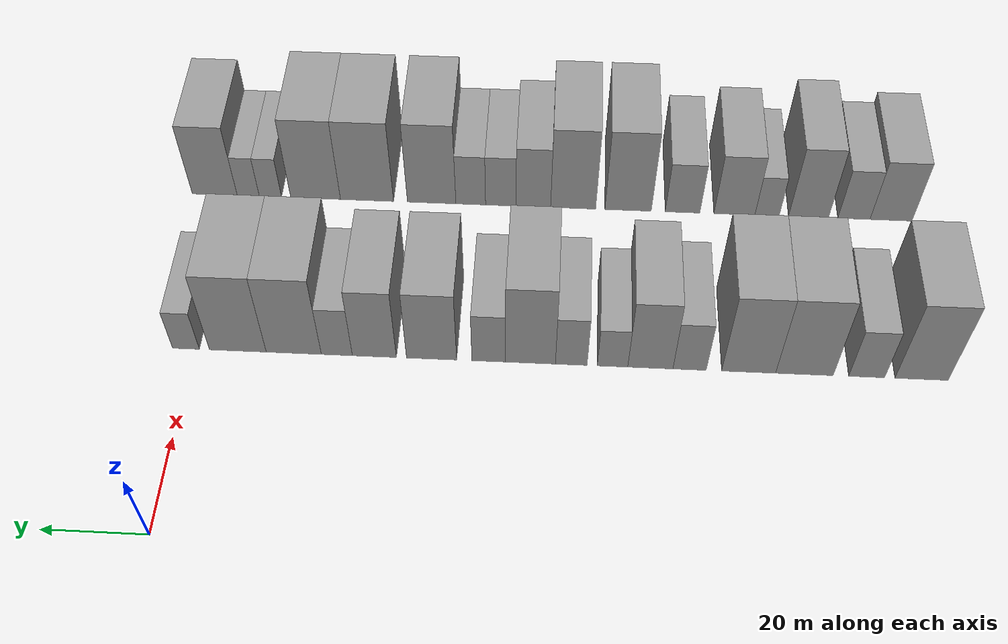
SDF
<sdf version="1.6">
 <world name="default">
  <model name="building_17">
   <static>1</static>
   <pose>50.0000 -142.6974 0 0.000000 0.000000 0.000000</pose>
   <link name="link">
    <pose>0 0 12.00 0 0 0</pose>
    <collision name="collision"><geometry><box><size>20.0000 10.2342 24.0000</size></box></geometry></collision>
    <visual name="visual">
     <cast_shadows>0</cast_shadows>
     <geometry><box><size>20.0000 10.2342 24.0000</size></box></geometry>
     <material>
      <script>
       <uri>model://grey_wall/materials/scripts</uri>
       <uri>model://grey_wall/materials/textures</uri>
       <name>vrc/grey_wall</name>
      </script>
     </material>
    </visual>
   </link>
  </model>
  <model name="building_18">
   <static>1</static>
   <pose>50.0000 -132.1075 0 0.000000 0.000000 0.000000</pose>
   <link name="link">
    <pose>0 0 7.50 0 0 0</pose>
    <collision name="collision"><geometry><box><size>20.0000 6.9456 15.0000</size></box></geometry></collision>
    <visual name="visual">
     <cast_shadows>0</cast_shadows>
     <geometry><box><size>20.0000 6.9456 15.0000</size></box></geometry>
     <material>
      <script>
       <uri>model://grey_wall/materials/scripts</uri>
       <uri>model://grey_wall/materials/textures</uri>
       <name>vrc/grey_wall</name>
      </script>
     </material>
    </visual>
   </link>
  </model>
  <model name="building_19">
   <static>1</static>
   <pose>50.0000 -120.0522 0 0.000000 0.000000 0.000000</pose>
   <link name="link">
    <pose>0 0 12.00 0 0 0</pose>
    <collision name="collision"><geometry><box><size>20.0000 11.1651 24.0000</size></box></geometry></collision>
    <visual name="visual">
     <cast_shadows>0</cast_shadows>
     <geometry><box><size>20.0000 11.1651 24.0000</size></box></geometry>
     <material>
      <script>
       <uri>model://grey_wall/materials/scripts</uri>
       <uri>model://grey_wall/materials/textures</uri>
       <name>vrc/grey_wall</name>
      </script>
     </material>
    </visual>
   </link>
  </model>
  <model name="building_20">
   <static>1</static>
   <pose>50.0000 -109.2274 0 0.000000 0.000000 0.000000</pose>
   <link name="link">
    <pose>0 0 12.00 0 0 0</pose>
    <collision name="collision"><geometry><box><size>20.0000 10.4845 24.0000</size></box></geometry></collision>
    <visual name="visual">
     <cast_shadows>0</cast_shadows>
     <geometry><box><size>20.0000 10.4845 24.0000</size></box></geometry>
     <material>
      <script>
       <uri>model://grey_wall/materials/scripts</uri>
       <uri>model://grey_wall/materials/textures</uri>
       <name>vrc/grey_wall</name>
      </script>
     </material>
    </visual>
   </link>
  </model>
  <model name="building_21">
   <static>1</static>
   <pose>50.0000 -97.7396 0 0.000000 0.000000 0.000000</pose>
   <link name="link">
    <pose>0 0 7.50 0 0 0</pose>
    <collision name="collision"><geometry><box><size>20.0000 6.4911 15.0000</size></box></geometry></collision>
    <visual name="visual">
     <cast_shadows>0</cast_shadows>
     <geometry><box><size>20.0000 6.4911 15.0000</size></box></geometry>
     <material>
      <script>
       <uri>model://grey_wall/materials/scripts</uri>
       <uri>model://grey_wall/materials/textures</uri>
       <name>vrc/grey_wall</name>
      </script>
     </material>
    </visual>
   </link>
  </model>
  <model name="building_22">
   <static>1</static>
   <pose>50.0000 -90.0830 0 0.000000 0.000000 0.000000</pose>
   <link name="link">
    <pose>0 0 10.50 0 0 0</pose>
    <collision name="collision"><geometry><box><size>20.0000 8.8221 21.0000</size></box></geometry></collision>
    <visual name="visual">
     <cast_shadows>0</cast_shadows>
     <geometry><box><size>20.0000 8.8221 21.0000</size></box></geometry>
     <material>
      <script>
       <uri>model://grey_wall/materials/scripts</uri>
       <uri>model://grey_wall/materials/textures</uri>
       <name>vrc/grey_wall</name>
      </script>
     </material>
    </visual>
   </link>
  </model>
  <model name="building_23">
   <static>1</static>
   <pose>50.0000 -82.6973 0 0.000000 0.000000 0.000000</pose>
   <link name="link">
    <pose>0 0 6.00 0 0 0</pose>
    <collision name="collision"><geometry><box><size>20.0000 5.9494 12.0000</size></box></geometry></collision>
    <visual name="visual">
     <cast_shadows>0</cast_shadows>
     <geometry><box><size>20.0000 5.9494 12.0000</size></box></geometry>
     <material>
      <script>
       <uri>model://grey_wall/materials/scripts</uri>
       <uri>model://grey_wall/materials/textures</uri>
       <name>vrc/grey_wall</name>
      </script>
     </material>
    </visual>
   </link>
  </model>
  <model name="building_24">
   <static>1</static>
   <pose>50.0000 -74.6171 0 0.000000 0.000000 0.000000</pose>
   <link name="link">
    <pose>0 0 7.50 0 0 0</pose>
    <collision name="collision"><geometry><box><size>20.0000 6.2110 15.0000</size></box></geometry></collision>
    <visual name="visual">
     <cast_shadows>0</cast_shadows>
     <geometry><box><size>20.0000 6.2110 15.0000</size></box></geometry>
     <material>
      <script>
       <uri>model://grey_wall/materials/scripts</uri>
       <uri>model://grey_wall/materials/textures</uri>
       <name>vrc/grey_wall</name>
      </script>
     </material>
    </visual>
   </link>
  </model>
  <model name="building_25">
   <static>1</static>
   <pose>50.0000 -66.6309 0 0.000000 0.000000 0.000000</pose>
   <link name="link">
    <pose>0 0 12.00 0 0 0</pose>
    <collision name="collision"><geometry><box><size>20.0000 9.7614 24.0000</size></box></geometry></collision>
    <visual name="visual">
     <cast_shadows>0</cast_shadows>
     <geometry><box><size>20.0000 9.7614 24.0000</size></box></geometry>
     <material>
      <script>
       <uri>model://grey_wall/materials/scripts</uri>
       <uri>model://grey_wall/materials/textures</uri>
       <name>vrc/grey_wall</name>
      </script>
     </material>
    </visual>
   </link>
  </model>
  <model name="building_26">
   <static>1</static>
   <pose>50.0000 -58.4410 0 0.000000 0.000000 0.000000</pose>
   <link name="link">
    <pose>0 0 7.50 0 0 0</pose>
    <collision name="collision"><geometry><box><size>20.0000 6.6184 15.0000</size></box></geometry></collision>
    <visual name="visual">
     <cast_shadows>0</cast_shadows>
     <geometry><box><size>20.0000 6.6184 15.0000</size></box></geometry>
     <material>
      <script>
       <uri>model://grey_wall/materials/scripts</uri>
       <uri>model://grey_wall/materials/textures</uri>
       <name>vrc/grey_wall</name>
      </script>
     </material>
    </visual>
   </link>
  </model>
  <model name="building_27">
   <static>1</static>
   <pose>50.0000 -47.1898 0 0.000000 0.000000 0.000000</pose>
   <link name="link">
    <pose>0 0 10.50 0 0 0</pose>
    <collision name="collision"><geometry><box><size>20.0000 9.8840 21.0000</size></box></geometry></collision>
    <visual name="visual">
     <cast_shadows>0</cast_shadows>
     <geometry><box><size>20.0000 9.8840 21.0000</size></box></geometry>
     <material>
      <script>
       <uri>model://grey_wall/materials/scripts</uri>
       <uri>model://grey_wall/materials/textures</uri>
       <name>vrc/grey_wall</name>
      </script>
     </material>
    </visual>
   </link>
  </model>
  <model name="building_28">
   <static>1</static>
   <pose>50.0000 -35.8952 0 0.000000 0.000000 0.000000</pose>
   <link name="link">
    <pose>0 0 10.50 0 0 0</pose>
    <collision name="collision"><geometry><box><size>20.0000 8.7052 21.0000</size></box></geometry></collision>
    <visual name="visual">
     <cast_shadows>0</cast_shadows>
     <geometry><box><size>20.0000 8.7052 21.0000</size></box></geometry>
     <material>
      <script>
       <uri>model://grey_wall/materials/scripts</uri>
       <uri>model://grey_wall/materials/textures</uri>
       <name>vrc/grey_wall</name>
      </script>
     </material>
    </visual>
   </link>
  </model>
  <model name="building_29">
   <static>1</static>
   <pose>50.0000 -28.4702 0 0.000000 0.000000 0.000000</pose>
   <link name="link">
    <pose>0 0 7.50 0 0 0</pose>
    <collision name="collision"><geometry><box><size>20.0000 6.1448 15.0000</size></box></geometry></collision>
    <visual name="visual">
     <cast_shadows>0</cast_shadows>
     <geometry><box><size>20.0000 6.1448 15.0000</size></box></geometry>
     <material>
      <script>
       <uri>model://grey_wall/materials/scripts</uri>
       <uri>model://grey_wall/materials/textures</uri>
       <name>vrc/grey_wall</name>
      </script>
     </material>
    </visual>
   </link>
  </model>
  <model name="building_30">
   <static>1</static>
   <pose>50.0000 -19.9293 0 0.000000 0.000000 0.000000</pose>
   <link name="link">
    <pose>0 0 12.00 0 0 0</pose>
    <collision name="collision"><geometry><box><size>20.0000 10.9371 24.0000</size></box></geometry></collision>
    <visual name="visual">
     <cast_shadows>0</cast_shadows>
     <geometry><box><size>20.0000 10.9371 24.0000</size></box></geometry>
     <material>
      <script>
       <uri>model://grey_wall/materials/scripts</uri>
       <uri>model://grey_wall/materials/textures</uri>
       <name>vrc/grey_wall</name>
      </script>
     </material>
    </visual>
   </link>
  </model>
  <model name="building_31">
   <static>1</static>
   <pose>50.0000 -8.8116 0 0.000000 0.000000 0.000000</pose>
   <link name="link">
    <pose>0 0 12.00 0 0 0</pose>
    <collision name="collision"><geometry><box><size>20.0000 11.2982 24.0000</size></box></geometry></collision>
    <visual name="visual">
     <cast_shadows>0</cast_shadows>
     <geometry><box><size>20.0000 11.2982 24.0000</size></box></geometry>
     <material>
      <script>
       <uri>model://grey_wall/materials/scripts</uri>
       <uri>model://grey_wall/materials/textures</uri>
       <name>vrc/grey_wall</name>
      </script>
     </material>
    </visual>
   </link>
  </model>
  <model name="building_32">
   <static>1</static>
   <pose>50.0000 1.5083 0 0.000000 0.000000 0.000000</pose>
   <link name="link">
    <pose>0 0 6.00 0 0 0</pose>
    <collision name="collision"><geometry><box><size>20.0000 5.3416 12.0000</size></box></geometry></collision>
    <visual name="visual">
     <cast_shadows>0</cast_shadows>
     <geometry><box><size>20.0000 5.3416 12.0000</size></box></geometry>
     <material>
      <script>
       <uri>model://grey_wall/materials/scripts</uri>
       <uri>model://grey_wall/materials/textures</uri>
       <name>vrc/grey_wall</name>
      </script>
     </material>
    </visual>
   </link>
  </model>
  <model name="building_86">
   <static>1</static>
   <pose>90.0000 -142.0244 0 0.000000 0.000000 0.000000</pose>
   <link name="link">
    <pose>0 0 9.00 0 0 0</pose>
    <collision name="collision"><geometry><box><size>20.0000 8.8716 18.0000</size></box></geometry></collision>
    <visual name="visual">
     <cast_shadows>0</cast_shadows>
     <geometry><box><size>20.0000 8.8716 18.0000</size></box></geometry>
     <material>
      <script>
       <uri>model://grey_wall/materials/scripts</uri>
       <uri>model://grey_wall/materials/textures</uri>
       <name>vrc/grey_wall</name>
      </script>
     </material>
    </visual>
   </link>
  </model>
  <model name="building_87">
   <static>1</static>
   <pose>90.0000 -134.1826 0 0.000000 0.000000 0.000000</pose>
   <link name="link">
    <pose>0 0 7.50 0 0 0</pose>
    <collision name="collision"><geometry><box><size>20.0000 6.8118 15.0000</size></box></geometry></collision>
    <visual name="visual">
     <cast_shadows>0</cast_shadows>
     <geometry><box><size>20.0000 6.8118 15.0000</size></box></geometry>
     <material>
      <script>
       <uri>model://grey_wall/materials/scripts</uri>
       <uri>model://grey_wall/materials/textures</uri>
       <name>vrc/grey_wall</name>
      </script>
     </material>
    </visual>
   </link>
  </model>
  <model name="building_88">
   <static>1</static>
   <pose>90.0000 -124.5405 0 0.000000 0.000000 0.000000</pose>
   <link name="link">
    <pose>0 0 10.50 0 0 0</pose>
    <collision name="collision"><geometry><box><size>20.0000 8.4725 21.0000</size></box></geometry></collision>
    <visual name="visual">
     <cast_shadows>0</cast_shadows>
     <geometry><box><size>20.0000 8.4725 21.0000</size></box></geometry>
     <material>
      <script>
       <uri>model://grey_wall/materials/scripts</uri>
       <uri>model://grey_wall/materials/textures</uri>
       <name>vrc/grey_wall</name>
      </script>
     </material>
    </visual>
   </link>
  </model>
  <model name="building_89">
   <static>1</static>
   <pose>90.0000 -115.7239 0 0.000000 0.000000 0.000000</pose>
   <link name="link">
    <pose>0 0 6.00 0 0 0</pose>
    <collision name="collision"><geometry><box><size>20.0000 5.1607 12.0000</size></box></geometry></collision>
    <visual name="visual">
     <cast_shadows>0</cast_shadows>
     <geometry><box><size>20.0000 5.1607 12.0000</size></box></geometry>
     <material>
      <script>
       <uri>model://grey_wall/materials/scripts</uri>
       <uri>model://grey_wall/materials/textures</uri>
       <name>vrc/grey_wall</name>
      </script>
     </material>
    </visual>
   </link>
  </model>
  <model name="building_90">
   <static>1</static>
   <pose>90.0000 -108.7787 0 0.000000 0.000000 0.000000</pose>
   <link name="link">
    <pose>0 0 9.00 0 0 0</pose>
    <collision name="collision"><geometry><box><size>20.0000 8.7297 18.0000</size></box></geometry></collision>
    <visual name="visual">
     <cast_shadows>0</cast_shadows>
     <geometry><box><size>20.0000 8.7297 18.0000</size></box></geometry>
     <material>
      <script>
       <uri>model://grey_wall/materials/scripts</uri>
       <uri>model://grey_wall/materials/textures</uri>
       <name>vrc/grey_wall</name>
      </script>
     </material>
    </visual>
   </link>
  </model>
  <model name="building_91">
   <static>1</static>
   <pose>90.0000 -97.7153 0 0.000000 0.000000 0.000000</pose>
   <link name="link">
    <pose>0 0 7.50 0 0 0</pose>
    <collision name="collision"><geometry><box><size>20.0000 7.3970 15.0000</size></box></geometry></collision>
    <visual name="visual">
     <cast_shadows>0</cast_shadows>
     <geometry><box><size>20.0000 7.3970 15.0000</size></box></geometry>
     <material>
      <script>
       <uri>model://grey_wall/materials/scripts</uri>
       <uri>model://grey_wall/materials/textures</uri>
       <name>vrc/grey_wall</name>
      </script>
     </material>
    </visual>
   </link>
  </model>
  <model name="building_92">
   <static>1</static>
   <pose>90.0000 -86.0694 0 0.000000 0.000000 0.000000</pose>
   <link name="link">
    <pose>0 0 12.00 0 0 0</pose>
    <collision name="collision"><geometry><box><size>20.0000 9.8949 24.0000</size></box></geometry></collision>
    <visual name="visual">
     <cast_shadows>0</cast_shadows>
     <geometry><box><size>20.0000 9.8949 24.0000</size></box></geometry>
     <material>
      <script>
       <uri>model://grey_wall/materials/scripts</uri>
       <uri>model://grey_wall/materials/textures</uri>
       <name>vrc/grey_wall</name>
      </script>
     </material>
    </visual>
   </link>
  </model>
  <model name="building_93">
   <static>1</static>
   <pose>90.0000 -74.2831 0 0.000000 0.000000 0.000000</pose>
   <link name="link">
    <pose>0 0 12.00 0 0 0</pose>
    <collision name="collision"><geometry><box><size>20.0000 9.6777 24.0000</size></box></geometry></collision>
    <visual name="visual">
     <cast_shadows>0</cast_shadows>
     <geometry><box><size>20.0000 9.6777 24.0000</size></box></geometry>
     <material>
      <script>
       <uri>model://grey_wall/materials/scripts</uri>
       <uri>model://grey_wall/materials/textures</uri>
       <name>vrc/grey_wall</name>
      </script>
     </material>
    </visual>
   </link>
  </model>
  <model name="building_94">
   <static>1</static>
   <pose>90.0000 -65.7197 0 0.000000 0.000000 0.000000</pose>
   <link name="link">
    <pose>0 0 9.00 0 0 0</pose>
    <collision name="collision"><geometry><box><size>20.0000 7.4491 18.0000</size></box></geometry></collision>
    <visual name="visual">
     <cast_shadows>0</cast_shadows>
     <geometry><box><size>20.0000 7.4491 18.0000</size></box></geometry>
     <material>
      <script>
       <uri>model://grey_wall/materials/scripts</uri>
       <uri>model://grey_wall/materials/textures</uri>
       <name>vrc/grey_wall</name>
      </script>
     </material>
    </visual>
   </link>
  </model>
  <model name="building_95">
   <static>1</static>
   <pose>90.0000 -58.7277 0 0.000000 0.000000 0.000000</pose>
   <link name="link">
    <pose>0 0 7.50 0 0 0</pose>
    <collision name="collision"><geometry><box><size>20.0000 6.5348 15.0000</size></box></geometry></collision>
    <visual name="visual">
     <cast_shadows>0</cast_shadows>
     <geometry><box><size>20.0000 6.5348 15.0000</size></box></geometry>
     <material>
      <script>
       <uri>model://grey_wall/materials/scripts</uri>
       <uri>model://grey_wall/materials/textures</uri>
       <name>vrc/grey_wall</name>
      </script>
     </material>
    </visual>
   </link>
  </model>
  <model name="building_96">
   <static>1</static>
   <pose>90.0000 -52.2620 0 0.000000 0.000000 0.000000</pose>
   <link name="link">
    <pose>0 0 7.50 0 0 0</pose>
    <collision name="collision"><geometry><box><size>20.0000 6.3967 15.0000</size></box></geometry></collision>
    <visual name="visual">
     <cast_shadows>0</cast_shadows>
     <geometry><box><size>20.0000 6.3967 15.0000</size></box></geometry>
     <material>
      <script>
       <uri>model://grey_wall/materials/scripts</uri>
       <uri>model://grey_wall/materials/textures</uri>
       <name>vrc/grey_wall</name>
      </script>
     </material>
    </visual>
   </link>
  </model>
  <model name="building_97">
   <static>1</static>
   <pose>90.0000 -43.8292 0 0.000000 0.000000 0.000000</pose>
   <link name="link">
    <pose>0 0 12.00 0 0 0</pose>
    <collision name="collision"><geometry><box><size>20.0000 10.4689 24.0000</size></box></geometry></collision>
    <visual name="visual">
     <cast_shadows>0</cast_shadows>
     <geometry><box><size>20.0000 10.4689 24.0000</size></box></geometry>
     <material>
      <script>
       <uri>model://grey_wall/materials/scripts</uri>
       <uri>model://grey_wall/materials/textures</uri>
       <name>vrc/grey_wall</name>
      </script>
     </material>
    </visual>
   </link>
  </model>
  <model name="building_98">
   <static>1</static>
   <pose>90.0000 -29.8407 0 0.000000 0.000000 0.000000</pose>
   <link name="link">
    <pose>0 0 12.00 0 0 0</pose>
    <collision name="collision"><geometry><box><size>20.0000 11.5080 24.0000</size></box></geometry></collision>
    <visual name="visual">
     <cast_shadows>0</cast_shadows>
     <geometry><box><size>20.0000 11.5080 24.0000</size></box></geometry>
     <material>
      <script>
       <uri>model://grey_wall/materials/scripts</uri>
       <uri>model://grey_wall/materials/textures</uri>
       <name>vrc/grey_wall</name>
      </script>
     </material>
    </visual>
   </link>
  </model>
  <model name="building_99">
   <static>1</static>
   <pose>90.0000 -18.6864 0 0.000000 0.000000 0.000000</pose>
   <link name="link">
    <pose>0 0 12.00 0 0 0</pose>
    <collision name="collision"><geometry><box><size>20.0000 10.8007 24.0000</size></box></geometry></collision>
    <visual name="visual">
     <cast_shadows>0</cast_shadows>
     <geometry><box><size>20.0000 10.8007 24.0000</size></box></geometry>
     <material>
      <script>
       <uri>model://grey_wall/materials/scripts</uri>
       <uri>model://grey_wall/materials/textures</uri>
       <name>vrc/grey_wall</name>
      </script>
     </material>
    </visual>
   </link>
  </model>
  <model name="building_100">
   <static>1</static>
   <pose>90.0000 -8.8683 0 0.000000 0.000000 0.000000</pose>
   <link name="link">
    <pose>0 0 6.00 0 0 0</pose>
    <collision name="collision"><geometry><box><size>20.0000 4.8355 12.0000</size></box></geometry></collision>
    <visual name="visual">
     <cast_shadows>0</cast_shadows>
     <geometry><box><size>20.0000 4.8355 12.0000</size></box></geometry>
     <material>
      <script>
       <uri>model://grey_wall/materials/scripts</uri>
       <uri>model://grey_wall/materials/textures</uri>
       <name>vrc/grey_wall</name>
      </script>
     </material>
    </visual>
   </link>
  </model>
  <model name="building_101">
   <static>1</static>
   <pose>90.0000 -4.0435 0 0.000000 0.000000 0.000000</pose>
   <link name="link">
    <pose>0 0 6.00 0 0 0</pose>
    <collision name="collision"><geometry><box><size>20.0000 4.8141 12.0000</size></box></geometry></collision>
    <visual name="visual">
     <cast_shadows>0</cast_shadows>
     <geometry><box><size>20.0000 4.8141 12.0000</size></box></geometry>
     <material>
      <script>
       <uri>model://grey_wall/materials/scripts</uri>
       <uri>model://grey_wall/materials/textures</uri>
       <name>vrc/grey_wall</name>
      </script>
     </material>
    </visual>
   </link>
  </model>
  <model name="building_102">
   <static>1</static>
   <pose>90.0000 3.2635 0 0.000000 0.000000 0.000000</pose>
   <link name="link">
    <pose>0 0 10.50 0 0 0</pose>
    <collision name="collision"><geometry><box><size>20.0000 9.7999 21.0000</size></box></geometry></collision>
    <visual name="visual">
     <cast_shadows>0</cast_shadows>
     <geometry><box><size>20.0000 9.7999 21.0000</size></box></geometry>
     <material>
      <script>
       <uri>model://grey_wall/materials/scripts</uri>
       <uri>model://grey_wall/materials/textures</uri>
       <name>vrc/grey_wall</name>
      </script>
     </material>
    </visual>
   </link>
  </model>
 </world>
</sdf>
